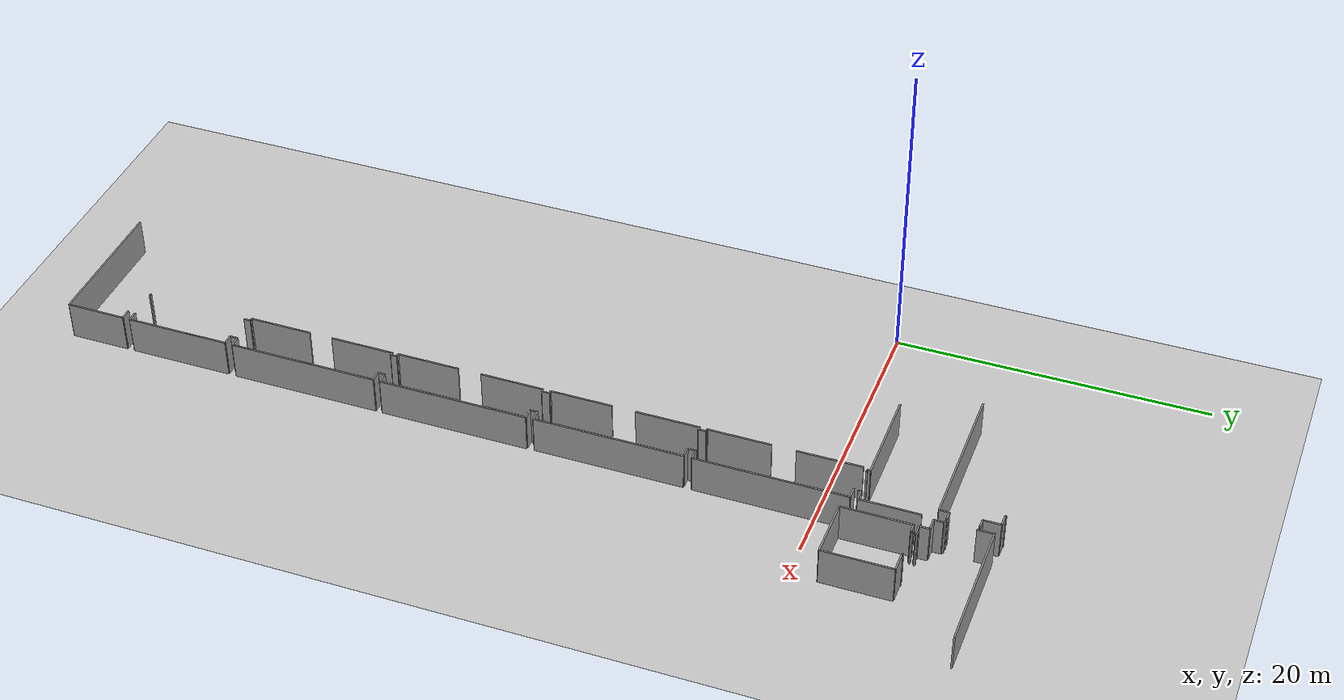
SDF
<sdf version="1.6">
 <world name="default">
  <model name="ground_plane">
   <static>1</static>
   <link name="link">
    <collision name="collision">
     <geometry><plane><normal>0 0 1</normal><size>100 100</size></plane></geometry>
     <surface><friction><ode><mu>100</mu><mu2>50</mu2></ode></friction></surface>
    </collision>
    <visual name="visual">
     <cast_shadows>0</cast_shadows>
     <geometry><plane><normal>0 0 1</normal><size>100 100</size></plane></geometry>
     <material>
      <script><uri>file://media/materials/scripts/gazebo.material</uri><name>Gazebo/Grey</name></script>
     </material>
    </visual>
   </link>
  </model>
  <model name="0510035739_A_40_1_102">
   <static>1</static>
   <link name="Wall_516">
    <collision name="Wall_516_Collision">
     <geometry><box><size>0.0939920246875 0.1 2.5</size></box></geometry>
     <pose>0.0469960123438 0 1.25 0 0 0</pose>
    </collision>
    <visual name="Wall_516_Visual">
     <pose>0.0469960123438 0 1.25 0 0 0</pose>
     <geometry><box><size>0.0939920246875 0.1 2.5</size></box></geometry>
     <material>
      <script><uri>file://media/materials/scripts/gazebo.material</uri><name>Gazebo/Grey</name></script>
      <ambient>1 1 1 1</ambient>
     </material>
    </visual>
    <pose>108.228122974 -38.8681220572 0 0 0 -1.57079632679</pose>
   </link>
   <link name="Wall_517">
    <collision name="Wall_517_Collision">
     <geometry><box><size>0.757794778985 0.1 2.5</size></box></geometry>
     <pose>0.378897389493 0 1.25 0 0 0</pose>
    </collision>
    <visual name="Wall_517_Visual">
     <pose>0.378897389493 0 1.25 0 0 0</pose>
     <geometry><box><size>0.757794778985 0.1 2.5</size></box></geometry>
     <material>
      <script><uri>file://media/materials/scripts/gazebo.material</uri><name>Gazebo/Grey</name></script>
      <ambient>1 1 1 1</ambient>
     </material>
    </visual>
    <pose>108.228122974 -38.9621140819 0 0 0 0.0</pose>
   </link>
   <link name="Wall_518">
    <collision name="Wall_518_Collision">
     <geometry><box><size>1.12408348224 0.1 2.5</size></box></geometry>
     <pose>0.562041741119 0 1.25 0 0 0</pose>
    </collision>
    <visual name="Wall_518_Visual">
     <pose>0.562041741119 0 1.25 0 0 0</pose>
     <geometry><box><size>1.12408348224 0.1 2.5</size></box></geometry>
     <material>
      <script><uri>file://media/materials/scripts/gazebo.material</uri><name>Gazebo/Grey</name></script>
      <ambient>1 1 1 1</ambient>
     </material>
    </visual>
    <pose>108.985917753 -38.9621140819 0 0 0 -1.57079632679</pose>
   </link>
   <link name="Wall_519">
    <collision name="Wall_519_Collision">
     <geometry><box><size>0.591207288075 0.1 2.5</size></box></geometry>
     <pose>0.295603644038 0 1.25 0 0 0</pose>
    </collision>
    <visual name="Wall_519_Visual">
     <pose>0.295603644038 0 1.25 0 0 0</pose>
     <geometry><box><size>0.591207288075 0.1 2.5</size></box></geometry>
     <material>
      <script><uri>file://media/materials/scripts/gazebo.material</uri><name>Gazebo/Grey</name></script>
      <ambient>1 1 1 1</ambient>
     </material>
    </visual>
    <pose>108.985917753 -40.0861975641 0 0 0 0.0</pose>
   </link>
   <link name="Wall_520">
    <collision name="Wall_520_Collision">
     <geometry><box><size>0.0664821638034 0.1 2.5</size></box></geometry>
     <pose>0.0332410819017 0 1.25 0 0 0</pose>
    </collision>
    <visual name="Wall_520_Visual">
     <pose>0.0332410819017 0 1.25 0 0 0</pose>
     <geometry><box><size>0.0664821638034 0.1 2.5</size></box></geometry>
     <material>
      <script><uri>file://media/materials/scripts/gazebo.material</uri><name>Gazebo/Grey</name></script>
      <ambient>1 1 1 1</ambient>
     </material>
    </visual>
    <pose>109.577125041 -40.0861975641 0 0 0 -1.57079632679</pose>
   </link>
   <link name="Wall_521">
    <collision name="Wall_521_Collision">
     <geometry><box><size>0.076925722102 0.1 2.5</size></box></geometry>
     <pose>0.038462861051 0 1.25 0 0 0</pose>
    </collision>
    <visual name="Wall_521_Visual">
     <pose>0.038462861051 0 1.25 0 0 0</pose>
     <geometry><box><size>0.076925722102 0.1 2.5</size></box></geometry>
     <material>
      <script><uri>file://media/materials/scripts/gazebo.material</uri><name>Gazebo/Grey</name></script>
      <ambient>1 1 1 1</ambient>
     </material>
    </visual>
    <pose>109.577125041 -41.9594153136 0 0 0 -1.57079632679</pose>
   </link>
   <link name="Wall_522">
    <collision name="Wall_522_Collision">
     <geometry><box><size>0.554272752629 0.1 2.5</size></box></geometry>
     <pose>0.277136376315 0 1.25 0 0 0</pose>
    </collision>
    <visual name="Wall_522_Visual">
     <pose>0.277136376315 0 1.25 0 0 0</pose>
     <geometry><box><size>0.554272752629 0.1 2.5</size></box></geometry>
     <material>
      <script><uri>file://media/materials/scripts/gazebo.material</uri><name>Gazebo/Grey</name></script>
      <ambient>1 1 1 1</ambient>
     </material>
    </visual>
    <pose>109.577125041 -42.0363410357 0 0 0 3.14159265359</pose>
   </link>
   <link name="Wall_523">
    <collision name="Wall_523_Collision">
     <geometry><box><size>0.616679381487 0.1 2.5</size></box></geometry>
     <pose>0.308339690743 0 1.25 0 0 0</pose>
    </collision>
    <visual name="Wall_523_Visual">
     <pose>0.308339690743 0 1.25 0 0 0</pose>
     <geometry><box><size>0.616679381487 0.1 2.5</size></box></geometry>
     <material>
      <script><uri>file://media/materials/scripts/gazebo.material</uri><name>Gazebo/Grey</name></script>
      <ambient>1 1 1 1</ambient>
     </material>
    </visual>
    <pose>109.022852289 -42.0363410357 0 0 0 -1.57079632679</pose>
   </link>
   <link name="Wall_524">
    <collision name="Wall_524_Collision">
     <geometry><box><size>9.87043619686 0.1 2.5</size></box></geometry>
     <pose>4.93521809843 0 1.25 0 0 0</pose>
    </collision>
    <visual name="Wall_524_Visual">
     <pose>4.93521809843 0 1.25 0 0 0</pose>
     <geometry><box><size>9.87043619686 0.1 2.5</size></box></geometry>
     <material>
      <script><uri>file://media/materials/scripts/gazebo.material</uri><name>Gazebo/Grey</name></script>
      <ambient>1 1 1 1</ambient>
     </material>
    </visual>
    <pose>109.022852289 -42.6530204172 0 0 0 3.14159265359</pose>
   </link>
   <link name="Wall_530">
    <collision name="Wall_530_Collision">
     <geometry><box><size>0.64597228891 0.1 2.5</size></box></geometry>
     <pose>0.322986144455 0 1.25 0 0 0</pose>
    </collision>
    <visual name="Wall_530_Visual">
     <pose>0.322986144455 0 1.25 0 0 0</pose>
     <geometry><box><size>0.64597228891 0.1 2.5</size></box></geometry>
     <material>
      <script><uri>file://media/materials/scripts/gazebo.material</uri><name>Gazebo/Grey</name></script>
      <ambient>1 1 1 1</ambient>
     </material>
    </visual>
    <pose>110.722605082 -43.3596162884 0 0 0 1.57079632679</pose>
   </link>
   <link name="Wall_531">
    <collision name="Wall_531_Collision">
     <geometry><box><size>0.797785965641 0.1 2.5</size></box></geometry>
     <pose>0.39889298282 0 1.25 0 0 0</pose>
    </collision>
    <visual name="Wall_531_Visual">
     <pose>0.39889298282 0 1.25 0 0 0</pose>
     <geometry><box><size>0.797785965641 0.1 2.5</size></box></geometry>
     <material>
      <script><uri>file://media/materials/scripts/gazebo.material</uri><name>Gazebo/Grey</name></script>
      <ambient>1 1 1 1</ambient>
     </material>
    </visual>
    <pose>110.722605082 -42.7136439995 0 0 0 3.14159265359</pose>
   </link>
   <link name="Wall_532">
    <collision name="Wall_532_Collision">
     <geometry><box><size>0.581782613513 0.1 2.5</size></box></geometry>
     <pose>0.290891306757 0 1.25 0 0 0</pose>
    </collision>
    <visual name="Wall_532_Visual">
     <pose>0.290891306757 0 1.25 0 0 0</pose>
     <geometry><box><size>0.581782613513 0.1 2.5</size></box></geometry>
     <material>
      <script><uri>file://media/materials/scripts/gazebo.material</uri><name>Gazebo/Grey</name></script>
      <ambient>1 1 1 1</ambient>
     </material>
    </visual>
    <pose>109.924819116 -42.7136439995 0 0 0 1.57079632679</pose>
   </link>
   <link name="Wall_533">
    <collision name="Wall_533_Collision">
     <geometry><box><size>0.0608783032529 0.1 2.5</size></box></geometry>
     <pose>0.0304391516265 0 1.25 0 0 0</pose>
    </collision>
    <visual name="Wall_533_Visual">
     <pose>0.0304391516265 0 1.25 0 0 0</pose>
     <geometry><box><size>0.0608783032529 0.1 2.5</size></box></geometry>
     <material>
      <script><uri>file://media/materials/scripts/gazebo.material</uri><name>Gazebo/Grey</name></script>
      <ambient>1 1 1 1</ambient>
     </material>
    </visual>
    <pose>109.924819116 -42.131861386 0 0 0 3.14159265359</pose>
   </link>
   <link name="Wall_534">
    <collision name="Wall_534_Collision">
     <geometry><box><size>0.151049513929 0.1 2.5</size></box></geometry>
     <pose>0.0755247569644 0 1.25 0 0 0</pose>
    </collision>
    <visual name="Wall_534_Visual">
     <pose>0.0755247569644 0 1.25 0 0 0</pose>
     <geometry><box><size>0.151049513929 0.1 2.5</size></box></geometry>
     <material>
      <script><uri>file://media/materials/scripts/gazebo.material</uri><name>Gazebo/Grey</name></script>
      <ambient>1 1 1 1</ambient>
     </material>
    </visual>
    <pose>109.863940813 -42.131861386 0 0 0 1.57079632679</pose>
   </link>
   <link name="Wall_535">
    <collision name="Wall_535_Collision">
     <geometry><box><size>1.02805369008 0.1 2.5</size></box></geometry>
     <pose>0.514026845039 0 1.25 0 0 0</pose>
    </collision>
    <visual name="Wall_535_Visual">
     <pose>0.514026845039 0 1.25 0 0 0</pose>
     <geometry><box><size>1.02805369008 0.1 2.5</size></box></geometry>
     <material>
      <script><uri>file://media/materials/scripts/gazebo.material</uri><name>Gazebo/Grey</name></script>
      <ambient>1 1 1 1</ambient>
     </material>
    </visual>
    <pose>109.863940813 -40.1906331471 0 0 0 1.57079632679</pose>
   </link>
   <link name="Wall_536">
    <collision name="Wall_536_Collision">
     <geometry><box><size>8.58918989828 0.1 2.5</size></box></geometry>
     <pose>4.29459494914 0 1.25 0 0 0</pose>
    </collision>
    <visual name="Wall_536_Visual">
     <pose>4.29459494914 0 1.25 0 0 0</pose>
     <geometry><box><size>8.58918989828 0.1 2.5</size></box></geometry>
     <material>
      <script><uri>file://media/materials/scripts/gazebo.material</uri><name>Gazebo/Grey</name></script>
      <ambient>1 1 1 1</ambient>
     </material>
    </visual>
    <pose>109.863940813 -39.162579457 0 0 0 0.0</pose>
   </link>
   <link name="Wall_545">
    <collision name="Wall_545_Collision">
     <geometry><box><size>0.10469030392 0.1 2.5</size></box></geometry>
     <pose>0.0523451519602 0 1.25 0 0 0</pose>
    </collision>
    <visual name="Wall_545_Visual">
     <pose>0.0523451519602 0 1.25 0 0 0</pose>
     <geometry><box><size>0.10469030392 0.1 2.5</size></box></geometry>
     <material>
      <script><uri>file://media/materials/scripts/gazebo.material</uri><name>Gazebo/Grey</name></script>
      <ambient>1 1 1 1</ambient>
     </material>
    </visual>
    <pose>111.427163186 -43.2895680315 0 0 0 3.14159265359</pose>
   </link>
   <link name="Wall_546">
    <collision name="Wall_546_Collision">
     <geometry><box><size>0.0728501871562 0.1 2.5</size></box></geometry>
     <pose>0.0364250935781 0 1.25 0 0 0</pose>
    </collision>
    <visual name="Wall_546_Visual">
     <pose>0.0364250935781 0 1.25 0 0 0</pose>
     <geometry><box><size>0.0728501871562 0.1 2.5</size></box></geometry>
     <material>
      <script><uri>file://media/materials/scripts/gazebo.material</uri><name>Gazebo/Grey</name></script>
      <ambient>1 1 1 1</ambient>
     </material>
    </visual>
    <pose>111.322472882 -43.2895680315 0 0 0 -1.57079632679</pose>
   </link>
   <link name="Wall_547">
    <collision name="Wall_547_Collision">
     <geometry><box><size>0.599874343586 0.1 2.5</size></box></geometry>
     <pose>0.299937171793 0 1.25 0 0 0</pose>
    </collision>
    <visual name="Wall_547_Visual">
     <pose>0.299937171793 0 1.25 0 0 0</pose>
     <geometry><box><size>0.599874343586 0.1 2.5</size></box></geometry>
     <material>
      <script><uri>file://media/materials/scripts/gazebo.material</uri><name>Gazebo/Grey</name></script>
      <ambient>1 1 1 1</ambient>
     </material>
    </visual>
    <pose>111.322472882 -43.3624182187 0 0 0 3.13692177461</pose>
   </link>
   <link name="Wall_548">
    <collision name="Wall_548_Collision">
     <geometry><box><size>4.43698395131 0.1 2.5</size></box></geometry>
     <pose>2.21849197565 0 1.25 0 0 0</pose>
    </collision>
    <visual name="Wall_548_Visual">
     <pose>2.21849197565 0 1.25 0 0 0</pose>
     <geometry><box><size>4.43698395131 0.1 2.5</size></box></geometry>
     <material>
      <script><uri>file://media/materials/scripts/gazebo.material</uri><name>Gazebo/Grey</name></script>
      <ambient>1 1 1 1</ambient>
     </material>
    </visual>
    <pose>110.717765384 -48.1043031281 0 0 0 1.57079632679</pose>
   </link>
   <link name="Wall_549">
    <collision name="Wall_549_Collision">
     <geometry><box><size>0.590443125273 0.1 2.5</size></box></geometry>
     <pose>0.295221562637 0 1.25 0 0 0</pose>
    </collision>
    <visual name="Wall_549_Visual">
     <pose>0.295221562637 0 1.25 0 0 0</pose>
     <geometry><box><size>0.590443125273 0.1 2.5</size></box></geometry>
     <material>
      <script><uri>file://media/materials/scripts/gazebo.material</uri><name>Gazebo/Grey</name></script>
      <ambient>1 1 1 1</ambient>
     </material>
    </visual>
    <pose>110.717765384 -43.6673191768 0 0 0 0.0</pose>
   </link>
   <link name="Wall_550">
    <collision name="Wall_550_Collision">
     <geometry><box><size>0.0766710011679 0.1 2.5</size></box></geometry>
     <pose>0.038335500584 0 1.25 0 0 0</pose>
    </collision>
    <visual name="Wall_550_Visual">
     <pose>0.038335500584 0 1.25 0 0 0</pose>
     <geometry><box><size>0.0766710011679 0.1 2.5</size></box></geometry>
     <material>
      <script><uri>file://media/materials/scripts/gazebo.material</uri><name>Gazebo/Grey</name></script>
      <ambient>1 1 1 1</ambient>
     </material>
    </visual>
    <pose>111.308208509 -43.6673191768 0 0 0 1.57079632679</pose>
   </link>
   <link name="Wall_551">
    <collision name="Wall_551_Collision">
     <geometry><box><size>0.0766710011679 0.1 2.5</size></box></geometry>
     <pose>0.0383355005839 0 1.25 0 0 0</pose>
    </collision>
    <visual name="Wall_551_Visual">
     <pose>0.0383355005839 0 1.25 0 0 0</pose>
     <geometry><box><size>0.0766710011679 0.1 2.5</size></box></geometry>
     <material>
      <script><uri>file://media/materials/scripts/gazebo.material</uri><name>Gazebo/Grey</name></script>
      <ambient>1 1 1 1</ambient>
     </material>
    </visual>
    <pose>111.308208509 -43.5906481756 0 0 0 0.0</pose>
   </link>
   <link name="Wall_552">
    <collision name="Wall_552_Collision">
     <geometry><box><size>0.0713218615516 0.1 2.5</size></box></geometry>
     <pose>0.0356609307758 0 1.25 0 0 0</pose>
    </collision>
    <visual name="Wall_552_Visual">
     <pose>0.0356609307758 0 1.25 0 0 0</pose>
     <geometry><box><size>0.0713218615516 0.1 2.5</size></box></geometry>
     <material>
      <script><uri>file://media/materials/scripts/gazebo.material</uri><name>Gazebo/Grey</name></script>
      <ambient>1 1 1 1</ambient>
     </material>
    </visual>
    <pose>113.180662096 -43.5906481756 0 0 0 0.0</pose>
   </link>
   <link name="Wall_553">
    <collision name="Wall_553_Collision">
     <geometry><box><size>0.0494158612179 0.1 2.5</size></box></geometry>
     <pose>0.0247079306089 0 1.25 0 0 0</pose>
    </collision>
    <visual name="Wall_553_Visual">
     <pose>0.0247079306089 0 1.25 0 0 0</pose>
     <geometry><box><size>0.0494158612179 0.1 2.5</size></box></geometry>
     <material>
      <script><uri>file://media/materials/scripts/gazebo.material</uri><name>Gazebo/Grey</name></script>
      <ambient>1 1 1 1</ambient>
     </material>
    </visual>
    <pose>113.251983958 -43.5906481756 0 0 0 -1.57079632679</pose>
   </link>
   <link name="Wall_554">
    <collision name="Wall_554_Collision">
     <geometry><box><size>1.2865954382 0.1 2.5</size></box></geometry>
     <pose>0.643297719101 0 1.25 0 0 0</pose>
    </collision>
    <visual name="Wall_554_Visual">
     <pose>0.643297719101 0 1.25 0 0 0</pose>
     <geometry><box><size>1.2865954382 0.1 2.5</size></box></geometry>
     <material>
      <script><uri>file://media/materials/scripts/gazebo.material</uri><name>Gazebo/Grey</name></script>
      <ambient>1 1 1 1</ambient>
     </material>
    </visual>
    <pose>113.251983958 -43.6400640368 0 0 0 0.0</pose>
   </link>
   <link name="Wall_555">
    <collision name="Wall_555_Collision">
     <geometry><box><size>4.46704102153 0.1 2.5</size></box></geometry>
     <pose>2.23352051077 0 1.25 0 0 0</pose>
    </collision>
    <visual name="Wall_555_Visual">
     <pose>2.23352051077 0 1.25 0 0 0</pose>
     <geometry><box><size>4.46704102153 0.1 2.5</size></box></geometry>
     <material>
      <script><uri>file://media/materials/scripts/gazebo.material</uri><name>Gazebo/Grey</name></script>
      <ambient>1 1 1 1</ambient>
     </material>
    </visual>
    <pose>114.538579396 -43.6400640368 0 0 0 -1.57079632679</pose>
   </link>
   <link name="Wall_556">
    <collision name="Wall_556_Collision">
     <geometry><box><size>3.82081503906 0.1 2.5</size></box></geometry>
     <pose>1.91040751953 0 1.25 0 0 0</pose>
    </collision>
    <visual name="Wall_556_Visual">
     <pose>1.91040751953 0 1.25 0 0 0</pose>
     <geometry><box><size>3.82081503906 0.1 2.5</size></box></geometry>
     <material>
      <script><uri>file://media/materials/scripts/gazebo.material</uri><name>Gazebo/Grey</name></script>
      <ambient>1 1 1 1</ambient>
     </material>
    </visual>
    <pose>114.538579396 -48.1071050584 0 0 0 3.14085932039</pose>
   </link>
   <link name="Wall_637">
    <collision name="Wall_637_Collision">
     <geometry><box><size>0.717294150461 0.1 2.5</size></box></geometry>
     <pose>0.358647075231 0 1.25 0 0 0</pose>
    </collision>
    <visual name="Wall_637_Visual">
     <pose>0.358647075231 0 1.25 0 0 0</pose>
     <geometry><box><size>0.717294150461 0.1 2.5</size></box></geometry>
     <material>
      <script><uri>file://media/materials/scripts/gazebo.material</uri><name>Gazebo/Grey</name></script>
      <ambient>1 1 1 1</ambient>
     </material>
    </visual>
    <pose>109.052399917 -95.1377594492 0 0 0 0.0</pose>
   </link>
   <link name="Wall_638">
    <collision name="Wall_638_Collision">
     <geometry><box><size>3.80451187191 0.1 2.5</size></box></geometry>
     <pose>1.90225593595 0 1.25 0 0 0</pose>
    </collision>
    <visual name="Wall_638_Visual">
     <pose>1.90225593595 0 1.25 0 0 0</pose>
     <geometry><box><size>3.80451187191 0.1 2.5</size></box></geometry>
     <material>
      <script><uri>file://media/materials/scripts/gazebo.material</uri><name>Gazebo/Grey</name></script>
      <ambient>1 1 1 1</ambient>
     </material>
    </visual>
    <pose>109.769694067 -95.1377594492 0 0 0 -1.57079632679</pose>
   </link>
   <link name="Wall_639">
    <collision name="Wall_639_Collision">
     <geometry><box><size>9.10245258051 0.1 2.5</size></box></geometry>
     <pose>4.55122629026 0 1.25 0 0 0</pose>
    </collision>
    <visual name="Wall_639_Visual">
     <pose>4.55122629026 0 1.25 0 0 0</pose>
     <geometry><box><size>9.10245258051 0.1 2.5</size></box></geometry>
     <material>
      <script><uri>file://media/materials/scripts/gazebo.material</uri><name>Gazebo/Grey</name></script>
      <ambient>1 1 1 1</ambient>
     </material>
    </visual>
    <pose>109.769694067 -98.9422713211 0 0 0 3.14159265359</pose>
   </link>
   <link name="Wall_642">
    <collision name="Wall_642_Collision">
     <geometry><box><size>0.755502290578 0.1 2.5</size></box></geometry>
     <pose>0.377751145289 0 1.25 0 0 0</pose>
    </collision>
    <visual name="Wall_642_Visual">
     <pose>0.377751145289 0 1.25 0 0 0</pose>
     <geometry><box><size>0.755502290578 0.1 2.5</size></box></geometry>
     <material>
      <script><uri>file://media/materials/scripts/gazebo.material</uri><name>Gazebo/Grey</name></script>
      <ambient>1 1 1 1</ambient>
     </material>
    </visual>
    <pose>109.007569033 -47.7517693553 0 0 0 0.0</pose>
   </link>
   <link name="Wall_643">
    <collision name="Wall_643_Collision">
     <geometry><box><size>9.66869721705 0.1 2.5</size></box></geometry>
     <pose>4.83434860852 0 1.25 0 0 0</pose>
    </collision>
    <visual name="Wall_643_Visual">
     <pose>4.83434860852 0 1.25 0 0 0</pose>
     <geometry><box><size>9.66869721705 0.1 2.5</size></box></geometry>
     <material>
      <script><uri>file://media/materials/scripts/gazebo.material</uri><name>Gazebo/Grey</name></script>
      <ambient>1 1 1 1</ambient>
     </material>
    </visual>
    <pose>109.763071323 -47.7517693553 0 0 0 -1.57079632679</pose>
   </link>
   <link name="Wall_644">
    <collision name="Wall_644_Collision">
     <geometry><box><size>0.685199312763 0.1 2.5</size></box></geometry>
     <pose>0.342599656381 0 1.25 0 0 0</pose>
    </collision>
    <visual name="Wall_644_Visual">
     <pose>0.342599656381 0 1.25 0 0 0</pose>
     <geometry><box><size>0.685199312763 0.1 2.5</size></box></geometry>
     <material>
      <script><uri>file://media/materials/scripts/gazebo.material</uri><name>Gazebo/Grey</name></script>
      <ambient>1 1 1 1</ambient>
     </material>
    </visual>
    <pose>109.763071323 -57.4204665723 0 0 0 3.14159265359</pose>
   </link>
   <link name="Wall_645">
    <collision name="Wall_645_Collision">
     <geometry><box><size>0.517592938117 0.1 2.5</size></box></geometry>
     <pose>0.258796469058 0 1.25 0 0 0</pose>
    </collision>
    <visual name="Wall_645_Visual">
     <pose>0.258796469058 0 1.25 0 0 0</pose>
     <geometry><box><size>0.517592938117 0.1 2.5</size></box></geometry>
     <material>
      <script><uri>file://media/materials/scripts/gazebo.material</uri><name>Gazebo/Grey</name></script>
      <ambient>1 1 1 1</ambient>
     </material>
    </visual>
    <pose>109.07787201 -57.4204665723 0 0 0 -1.57079632679</pose>
   </link>
   <link name="Wall_646">
    <collision name="Wall_646_Collision">
     <geometry><box><size>0.682906824356 0.1 2.5</size></box></geometry>
     <pose>0.341453412178 0 1.25 0 0 0</pose>
    </collision>
    <visual name="Wall_646_Visual">
     <pose>0.341453412178 0 1.25 0 0 0</pose>
     <geometry><box><size>0.682906824356 0.1 2.5</size></box></geometry>
     <material>
      <script><uri>file://media/materials/scripts/gazebo.material</uri><name>Gazebo/Grey</name></script>
      <ambient>1 1 1 1</ambient>
     </material>
    </visual>
    <pose>109.07787201 -57.9380595105 0 0 0 0.0</pose>
   </link>
   <link name="Wall_647">
    <collision name="Wall_647_Collision">
     <geometry><box><size>9.52477988927 0.1 2.5</size></box></geometry>
     <pose>4.76238994464 0 1.25 0 0 0</pose>
    </collision>
    <visual name="Wall_647_Visual">
     <pose>4.76238994464 0 1.25 0 0 0</pose>
     <geometry><box><size>9.52477988927 0.1 2.5</size></box></geometry>
     <material>
      <script><uri>file://media/materials/scripts/gazebo.material</uri><name>Gazebo/Grey</name></script>
      <ambient>1 1 1 1</ambient>
     </material>
    </visual>
    <pose>109.760778835 -57.9380595105 0 0 0 -1.57079632679</pose>
   </link>
   <link name="Wall_648">
    <collision name="Wall_648_Collision">
     <geometry><box><size>0.663293312429 0.1 2.5</size></box></geometry>
     <pose>0.331646656215 0 1.25 0 0 0</pose>
    </collision>
    <visual name="Wall_648_Visual">
     <pose>0.331646656215 0 1.25 0 0 0</pose>
     <geometry><box><size>0.663293312429 0.1 2.5</size></box></geometry>
     <material>
      <script><uri>file://media/materials/scripts/gazebo.material</uri><name>Gazebo/Grey</name></script>
      <ambient>1 1 1 1</ambient>
     </material>
    </visual>
    <pose>109.760778835 -67.4628393997 0 0 0 3.14159265359</pose>
   </link>
   <link name="Wall_649">
    <collision name="Wall_649_Collision">
     <geometry><box><size>0.478875356132 0.1 2.5</size></box></geometry>
     <pose>0.239437678066 0 1.25 0 0 0</pose>
    </collision>
    <visual name="Wall_649_Visual">
     <pose>0.239437678066 0 1.25 0 0 0</pose>
     <geometry><box><size>0.478875356132 0.1 2.5</size></box></geometry>
     <material>
      <script><uri>file://media/materials/scripts/gazebo.material</uri><name>Gazebo/Grey</name></script>
      <ambient>1 1 1 1</ambient>
     </material>
    </visual>
    <pose>109.097485522 -67.4628393997 0 0 0 -1.57079632679</pose>
   </link>
   <link name="Wall_650">
    <collision name="Wall_650_Collision">
     <geometry><box><size>0.699208964139 0.1 2.5</size></box></geometry>
     <pose>0.34960448207 0 1.25 0 0 0</pose>
    </collision>
    <visual name="Wall_650_Visual">
     <pose>0.34960448207 0 1.25 0 0 0</pose>
     <geometry><box><size>0.699208964139 0.1 2.5</size></box></geometry>
     <material>
      <script><uri>file://media/materials/scripts/gazebo.material</uri><name>Gazebo/Grey</name></script>
      <ambient>1 1 1 1</ambient>
     </material>
    </visual>
    <pose>109.097485522 -67.9417147559 0 0 0 0.0</pose>
   </link>
   <link name="Wall_651">
    <collision name="Wall_651_Collision">
     <geometry><box><size>9.56298802939 0.1 2.5</size></box></geometry>
     <pose>4.78149401469 0 1.25 0 0 0</pose>
    </collision>
    <visual name="Wall_651_Visual">
     <pose>4.78149401469 0 1.25 0 0 0</pose>
     <geometry><box><size>9.56298802939 0.1 2.5</size></box></geometry>
     <material>
      <script><uri>file://media/materials/scripts/gazebo.material</uri><name>Gazebo/Grey</name></script>
      <ambient>1 1 1 1</ambient>
     </material>
    </visual>
    <pose>109.796694486 -67.9417147559 0 0 0 -1.57079632679</pose>
   </link>
   <link name="Wall_652">
    <collision name="Wall_652_Collision">
     <geometry><box><size>0.707105313097 0.1 2.5</size></box></geometry>
     <pose>0.353552656548 0 1.25 0 0 0</pose>
    </collision>
    <visual name="Wall_652_Visual">
     <pose>0.353552656548 0 1.25 0 0 0</pose>
     <geometry><box><size>0.707105313097 0.1 2.5</size></box></geometry>
     <material>
      <script><uri>file://media/materials/scripts/gazebo.material</uri><name>Gazebo/Grey</name></script>
      <ambient>1 1 1 1</ambient>
     </material>
    </visual>
    <pose>109.796694486 -77.5047027852 0 0 0 3.14159265359</pose>
   </link>
   <link name="Wall_653">
    <collision name="Wall_653_Collision">
     <geometry><box><size>0.440667216015 0.1 2.5</size></box></geometry>
     <pose>0.220333608007 0 1.25 0 0 0</pose>
    </collision>
    <visual name="Wall_653_Visual">
     <pose>0.220333608007 0 1.25 0 0 0</pose>
     <geometry><box><size>0.440667216015 0.1 2.5</size></box></geometry>
     <material>
      <script><uri>file://media/materials/scripts/gazebo.material</uri><name>Gazebo/Grey</name></script>
      <ambient>1 1 1 1</ambient>
     </material>
    </visual>
    <pose>109.089589173 -77.5047027852 0 0 0 -1.57079632679</pose>
   </link>
   <link name="Wall_654">
    <collision name="Wall_654_Collision">
     <geometry><box><size>0.692586219852 0.1 2.5</size></box></geometry>
     <pose>0.346293109926 0 1.25 0 0 0</pose>
    </collision>
    <visual name="Wall_654_Visual">
     <pose>0.346293109926 0 1.25 0 0 0</pose>
     <geometry><box><size>0.692586219852 0.1 2.5</size></box></geometry>
     <material>
      <script><uri>file://media/materials/scripts/gazebo.material</uri><name>Gazebo/Grey</name></script>
      <ambient>1 1 1 1</ambient>
     </material>
    </visual>
    <pose>109.089589173 -77.9453700013 0 0 0 0.0</pose>
   </link>
   <link name="Wall_655">
    <collision name="Wall_655_Collision">
     <geometry><box><size>9.545157564 0.1 2.5</size></box></geometry>
     <pose>4.772578782 0 1.25 0 0 0</pose>
    </collision>
    <visual name="Wall_655_Visual">
     <pose>4.772578782 0 1.25 0 0 0</pose>
     <geometry><box><size>9.545157564 0.1 2.5</size></box></geometry>
     <material>
      <script><uri>file://media/materials/scripts/gazebo.material</uri><name>Gazebo/Grey</name></script>
      <ambient>1 1 1 1</ambient>
     </material>
    </visual>
    <pose>109.782175393 -77.9453700013 0 0 0 -1.57079632679</pose>
   </link>
   <link name="Wall_656">
    <collision name="Wall_656_Collision">
     <geometry><box><size>0.692586219852 0.1 2.5</size></box></geometry>
     <pose>0.346293109926 0 1.25 0 0 0</pose>
    </collision>
    <visual name="Wall_656_Visual">
     <pose>0.346293109926 0 1.25 0 0 0</pose>
     <geometry><box><size>0.692586219852 0.1 2.5</size></box></geometry>
     <material>
      <script><uri>file://media/materials/scripts/gazebo.material</uri><name>Gazebo/Grey</name></script>
      <ambient>1 1 1 1</ambient>
     </material>
    </visual>
    <pose>109.782175393 -87.4905275653 0 0 0 3.14159265359</pose>
   </link>
   <link name="Wall_657">
    <collision name="Wall_657_Collision">
     <geometry><box><size>0.516319333446 0.1 2.5</size></box></geometry>
     <pose>0.258159666723 0 1.25 0 0 0</pose>
    </collision>
    <visual name="Wall_657_Visual">
     <pose>0.258159666723 0 1.25 0 0 0</pose>
     <geometry><box><size>0.516319333446 0.1 2.5</size></box></geometry>
     <material>
      <script><uri>file://media/materials/scripts/gazebo.material</uri><name>Gazebo/Grey</name></script>
      <ambient>1 1 1 1</ambient>
     </material>
    </visual>
    <pose>109.089589173 -87.4905275653 0 0 0 -1.57079632679</pose>
   </link>
   <link name="Wall_658">
    <collision name="Wall_658_Collision">
     <geometry><box><size>0.679850173147 0.1 2.5</size></box></geometry>
     <pose>0.339925086573 0 1.25 0 0 0</pose>
    </collision>
    <visual name="Wall_658_Visual">
     <pose>0.339925086573 0 1.25 0 0 0</pose>
     <geometry><box><size>0.679850173147 0.1 2.5</size></box></geometry>
     <material>
      <script><uri>file://media/materials/scripts/gazebo.material</uri><name>Gazebo/Grey</name></script>
      <ambient>1 1 1 1</ambient>
     </material>
    </visual>
    <pose>109.089589173 -88.0068468987 0 0 0 0.0</pose>
   </link>
   <link name="Wall_659">
    <collision name="Wall_659_Collision">
     <geometry><box><size>6.63624449644 0.1 2.5</size></box></geometry>
     <pose>3.31812224822 0 1.25 0 0 0</pose>
    </collision>
    <visual name="Wall_659_Visual">
     <pose>3.31812224822 0 1.25 0 0 0</pose>
     <geometry><box><size>6.63624449644 0.1 2.5</size></box></geometry>
     <material>
      <script><uri>file://media/materials/scripts/gazebo.material</uri><name>Gazebo/Grey</name></script>
      <ambient>1 1 1 1</ambient>
     </material>
    </visual>
    <pose>109.769439346 -88.0068468987 0 0 0 -1.57079632679</pose>
   </link>
   <link name="Wall_660">
    <collision name="Wall_660_Collision">
     <geometry><box><size>0.667368847375 0.1 2.5</size></box></geometry>
     <pose>0.333684423688 0 1.25 0 0 0</pose>
    </collision>
    <visual name="Wall_660_Visual">
     <pose>0.333684423688 0 1.25 0 0 0</pose>
     <geometry><box><size>0.667368847375 0.1 2.5</size></box></geometry>
     <material>
      <script><uri>file://media/materials/scripts/gazebo.material</uri><name>Gazebo/Grey</name></script>
      <ambient>1 1 1 1</ambient>
     </material>
    </visual>
    <pose>109.769439346 -94.6430913951 0 0 0 3.14159265359</pose>
   </link>
   <link name="Wall_661">
    <collision name="Wall_661_Collision">
     <geometry><box><size>0.165313886239 0.1 2.5</size></box></geometry>
     <pose>0.0826569431195 0 1.25 0 0 0</pose>
    </collision>
    <visual name="Wall_661_Visual">
     <pose>0.0826569431195 0 1.25 0 0 0</pose>
     <geometry><box><size>0.165313886239 0.1 2.5</size></box></geometry>
     <material>
      <script><uri>file://media/materials/scripts/gazebo.material</uri><name>Gazebo/Grey</name></script>
      <ambient>1 1 1 1</ambient>
     </material>
    </visual>
    <pose>107.216880866 -94.6430913951 0 0 0 3.14159265359</pose>
   </link>
   <link name="Wall_665">
    <collision name="Wall_665_Collision">
     <geometry><box><size>0.428185890243 0.1 2.5</size></box></geometry>
     <pose>0.214092945122 0 1.25 0 0 0</pose>
    </collision>
    <visual name="Wall_665_Visual">
     <pose>0.214092945122 0 1.25 0 0 0</pose>
     <geometry><box><size>0.428185890243 0.1 2.5</size></box></geometry>
     <material>
      <script><uri>file://media/materials/scripts/gazebo.material</uri><name>Gazebo/Grey</name></script>
      <ambient>1 1 1 1</ambient>
     </material>
    </visual>
    <pose>107.276230843 -87.9691482005 0 0 0 1.57079632679</pose>
   </link>
   <link name="Wall_666">
    <collision name="Wall_666_Collision">
     <geometry><box><size>0.195370956464 0.1 2.5</size></box></geometry>
     <pose>0.0976854782322 0 1.25 0 0 0</pose>
    </collision>
    <visual name="Wall_666_Visual">
     <pose>0.0976854782322 0 1.25 0 0 0</pose>
     <geometry><box><size>0.195370956464 0.1 2.5</size></box></geometry>
     <material>
      <script><uri>file://media/materials/scripts/gazebo.material</uri><name>Gazebo/Grey</name></script>
      <ambient>1 1 1 1</ambient>
     </material>
    </visual>
    <pose>107.276230843 -87.5409623102 0 0 0 3.14159265359</pose>
   </link>
   <link name="Wall_667">
    <collision name="Wall_667_Collision">
     <geometry><box><size>4.0217888287 0.1 2.5</size></box></geometry>
     <pose>2.01089441435 0 1.25 0 0 0</pose>
    </collision>
    <visual name="Wall_667_Visual">
     <pose>2.01089441435 0 1.25 0 0 0</pose>
     <geometry><box><size>4.0217888287 0.1 2.5</size></box></geometry>
     <material>
      <script><uri>file://media/materials/scripts/gazebo.material</uri><name>Gazebo/Grey</name></script>
      <ambient>1 1 1 1</ambient>
     </material>
    </visual>
    <pose>107.080859887 -87.5409623102 0 0 0 1.57079632679</pose>
   </link>
   <link name="Wall_668">
    <collision name="Wall_668_Collision">
     <geometry><box><size>4.0867426669 0.1 2.5</size></box></geometry>
     <pose>2.04337133345 0 1.25 0 0 0</pose>
    </collision>
    <visual name="Wall_668_Visual">
     <pose>2.04337133345 0 1.25 0 0 0</pose>
     <geometry><box><size>4.0867426669 0.1 2.5</size></box></geometry>
     <material>
      <script><uri>file://media/materials/scripts/gazebo.material</uri><name>Gazebo/Grey</name></script>
      <ambient>1 1 1 1</ambient>
     </material>
    </visual>
    <pose>107.080859887 -82.013263319 0 0 0 1.57079632679</pose>
   </link>
   <link name="Wall_669">
    <collision name="Wall_669_Collision">
     <geometry><box><size>0.195370956464 0.1 2.5</size></box></geometry>
     <pose>0.0976854782322 0 1.25 0 0 0</pose>
    </collision>
    <visual name="Wall_669_Visual">
     <pose>0.0976854782322 0 1.25 0 0 0</pose>
     <geometry><box><size>0.195370956464 0.1 2.5</size></box></geometry>
     <material>
      <script><uri>file://media/materials/scripts/gazebo.material</uri><name>Gazebo/Grey</name></script>
      <ambient>1 1 1 1</ambient>
     </material>
    </visual>
    <pose>107.080859887 -77.9265206521 0 0 0 0.0</pose>
   </link>
   <link name="Wall_670">
    <collision name="Wall_670_Collision">
     <geometry><box><size>0.390487191995 0.1 2.5</size></box></geometry>
     <pose>0.195243595997 0 1.25 0 0 0</pose>
    </collision>
    <visual name="Wall_670_Visual">
     <pose>0.195243595997 0 1.25 0 0 0</pose>
     <geometry><box><size>0.390487191995 0.1 2.5</size></box></geometry>
     <material>
      <script><uri>file://media/materials/scripts/gazebo.material</uri><name>Gazebo/Grey</name></script>
      <ambient>1 1 1 1</ambient>
     </material>
    </visual>
    <pose>107.276230843 -77.9265206521 0 0 0 1.57079632679</pose>
   </link>
   <link name="Wall_671">
    <collision name="Wall_671_Collision">
     <geometry><box><size>0.214220305589 0.1 2.5</size></box></geometry>
     <pose>0.107110152794 0 1.25 0 0 0</pose>
    </collision>
    <visual name="Wall_671_Visual">
     <pose>0.107110152794 0 1.25 0 0 0</pose>
     <geometry><box><size>0.214220305589 0.1 2.5</size></box></geometry>
     <material>
      <script><uri>file://media/materials/scripts/gazebo.material</uri><name>Gazebo/Grey</name></script>
      <ambient>1 1 1 1</ambient>
     </material>
    </visual>
    <pose>107.276230843 -77.5360334601 0 0 0 3.14159265359</pose>
   </link>
   <link name="Wall_672">
    <collision name="Wall_672_Collision">
     <geometry><box><size>4.03044934046 0.1 2.5</size></box></geometry>
     <pose>2.01522467023 0 1.25 0 0 0</pose>
    </collision>
    <visual name="Wall_672_Visual">
     <pose>2.01522467023 0 1.25 0 0 0</pose>
     <geometry><box><size>4.03044934046 0.1 2.5</size></box></geometry>
     <material>
      <script><uri>file://media/materials/scripts/gazebo.material</uri><name>Gazebo/Grey</name></script>
      <ambient>1 1 1 1</ambient>
     </material>
    </visual>
    <pose>107.062010538 -77.5360334601 0 0 0 1.57079632679</pose>
   </link>
   <link name="Wall_673">
    <collision name="Wall_673_Collision">
     <geometry><box><size>4.07757271327 0.1 2.5</size></box></geometry>
     <pose>2.03878635664 0 1.25 0 0 0</pose>
    </collision>
    <visual name="Wall_673_Visual">
     <pose>2.03878635664 0 1.25 0 0 0</pose>
     <geometry><box><size>4.07757271327 0.1 2.5</size></box></geometry>
     <material>
      <script><uri>file://media/materials/scripts/gazebo.material</uri><name>Gazebo/Grey</name></script>
      <ambient>1 1 1 1</ambient>
     </material>
    </visual>
    <pose>107.062010538 -72.0088439108 0 0 0 1.57079632679</pose>
   </link>
   <link name="Wall_674">
    <collision name="Wall_674_Collision">
     <geometry><box><size>0.192059584321 0.1 2.5</size></box></geometry>
     <pose>0.0960297921605 0 1.25 0 0 0</pose>
    </collision>
    <visual name="Wall_674_Visual">
     <pose>0.0960297921605 0 1.25 0 0 0</pose>
     <geometry><box><size>0.192059584321 0.1 2.5</size></box></geometry>
     <material>
      <script><uri>file://media/materials/scripts/gazebo.material</uri><name>Gazebo/Grey</name></script>
      <ambient>1 1 1 1</ambient>
     </material>
    </visual>
    <pose>107.062010538 -67.9312711976 0 0 0 0.0</pose>
   </link>
   <link name="Wall_675">
    <collision name="Wall_675_Collision">
     <geometry><box><size>0.482950891078 0.1 2.5</size></box></geometry>
     <pose>0.241475445539 0 1.25 0 0 0</pose>
    </collision>
    <visual name="Wall_675_Visual">
     <pose>0.241475445539 0 1.25 0 0 0</pose>
     <geometry><box><size>0.482950891078 0.1 2.5</size></box></geometry>
     <material>
      <script><uri>file://media/materials/scripts/gazebo.material</uri><name>Gazebo/Grey</name></script>
      <ambient>1 1 1 1</ambient>
     </material>
    </visual>
    <pose>107.254070122 -67.9312711976 0 0 0 1.57079632679</pose>
   </link>
   <link name="Wall_676">
    <collision name="Wall_676_Collision">
     <geometry><box><size>0.199955933278 0.1 2.5</size></box></geometry>
     <pose>0.0999779666392 0 1.25 0 0 0</pose>
    </collision>
    <visual name="Wall_676_Visual">
     <pose>0.0999779666392 0 1.25 0 0 0</pose>
     <geometry><box><size>0.199955933278 0.1 2.5</size></box></geometry>
     <material>
      <script><uri>file://media/materials/scripts/gazebo.material</uri><name>Gazebo/Grey</name></script>
      <ambient>1 1 1 1</ambient>
     </material>
    </visual>
    <pose>107.254070122 -67.4483203065 0 0 0 3.14159265359</pose>
   </link>
   <link name="Wall_677">
    <collision name="Wall_677_Collision">
     <geometry><box><size>3.97874099084 0.1 2.5</size></box></geometry>
     <pose>1.98937049542 0 1.25 0 0 0</pose>
    </collision>
    <visual name="Wall_677_Visual">
     <pose>1.98937049542 0 1.25 0 0 0</pose>
     <geometry><box><size>3.97874099084 0.1 2.5</size></box></geometry>
     <material>
      <script><uri>file://media/materials/scripts/gazebo.material</uri><name>Gazebo/Grey</name></script>
      <ambient>1 1 1 1</ambient>
     </material>
    </visual>
    <pose>107.054114189 -67.4483203065 0 0 0 1.57079632679</pose>
   </link>
   <link name="Wall_678">
    <collision name="Wall_678_Collision">
     <geometry><box><size>4.05694031761 0.1 2.5</size></box></geometry>
     <pose>2.02847015881 0 1.25 0 0 0</pose>
    </collision>
    <visual name="Wall_678_Visual">
     <pose>2.02847015881 0 1.25 0 0 0</pose>
     <geometry><box><size>4.05694031761 0.1 2.5</size></box></geometry>
     <material>
      <script><uri>file://media/materials/scripts/gazebo.material</uri><name>Gazebo/Grey</name></script>
      <ambient>1 1 1 1</ambient>
     </material>
    </visual>
    <pose>107.054114189 -61.9649427578 0 0 0 1.57079632679</pose>
   </link>
   <link name="Wall_679">
    <collision name="Wall_679_Collision">
     <geometry><box><size>0.197154003003 0.1 2.5</size></box></geometry>
     <pose>0.0985770015016 0 1.25 0 0 0</pose>
    </collision>
    <visual name="Wall_679_Visual">
     <pose>0.0985770015016 0 1.25 0 0 0</pose>
     <geometry><box><size>0.197154003003 0.1 2.5</size></box></geometry>
     <material>
      <script><uri>file://media/materials/scripts/gazebo.material</uri><name>Gazebo/Grey</name></script>
      <ambient>1 1 1 1</ambient>
     </material>
    </visual>
    <pose>107.054114189 -57.9080024402 0 0 0 0.0</pose>
   </link>
   <link name="Wall_680">
    <collision name="Wall_680_Collision">
     <geometry><box><size>0.481677286407 0.1 2.5</size></box></geometry>
     <pose>0.240838643203 0 1.25 0 0 0</pose>
    </collision>
    <visual name="Wall_680_Visual">
     <pose>0.240838643203 0 1.25 0 0 0</pose>
     <geometry><box><size>0.481677286407 0.1 2.5</size></box></geometry>
     <material>
      <script><uri>file://media/materials/scripts/gazebo.material</uri><name>Gazebo/Grey</name></script>
      <ambient>1 1 1 1</ambient>
     </material>
    </visual>
    <pose>107.251268192 -57.9080024402 0 0 0 1.57079632679</pose>
   </link>
   <link name="Wall_681">
    <collision name="Wall_681_Collision">
     <geometry><box><size>0.186201002836 0.1 2.5</size></box></geometry>
     <pose>0.0931005014181 0 1.25 0 0 0</pose>
    </collision>
    <visual name="Wall_681_Visual">
     <pose>0.0931005014181 0 1.25 0 0 0</pose>
     <geometry><box><size>0.186201002836 0.1 2.5</size></box></geometry>
     <material>
      <script><uri>file://media/materials/scripts/gazebo.material</uri><name>Gazebo/Grey</name></script>
      <ambient>1 1 1 1</ambient>
     </material>
    </visual>
    <pose>107.251268192 -57.4263251538 0 0 0 3.14159265359</pose>
   </link>
   <link name="Wall_682">
    <collision name="Wall_682_Collision">
     <geometry><box><size>4.04063817783 0.1 2.5</size></box></geometry>
     <pose>2.02031908891 0 1.25 0 0 0</pose>
    </collision>
    <visual name="Wall_682_Visual">
     <pose>2.02031908891 0 1.25 0 0 0</pose>
     <geometry><box><size>4.04063817783 0.1 2.5</size></box></geometry>
     <material>
      <script><uri>file://media/materials/scripts/gazebo.material</uri><name>Gazebo/Grey</name></script>
      <ambient>1 1 1 1</ambient>
     </material>
    </visual>
    <pose>107.065067189 -57.4263251538 0 0 0 1.57079632679</pose>
   </link>
   <link name="Wall_683">
    <collision name="Wall_683_Collision">
     <geometry><box><size>4.11840065945 0.1 2.5</size></box></geometry>
     <pose>2.05920032972 0 1.25 0 0 0</pose>
    </collision>
    <visual name="Wall_683_Visual">
     <pose>2.05920032972 0 1.25 0 0 0</pose>
     <geometry><box><size>4.11840065945 0.1 2.5</size></box></geometry>
     <material>
      <script><uri>file://media/materials/scripts/gazebo.material</uri><name>Gazebo/Grey</name></script>
      <ambient>1 1 1 1</ambient>
     </material>
    </visual>
    <pose>107.065067189 -51.870097418 0 0 0 1.57673391164</pose>
   </link>
   <link name="Wall_687">
    <collision name="Wall_687_Collision">
     <geometry><box><size>3.84221057015 0.1 2.5</size></box></geometry>
     <pose>1.92110528508 0 1.25 0 0 0</pose>
    </collision>
    <visual name="Wall_687_Visual">
     <pose>1.92110528508 0 1.25 0 0 0</pose>
     <geometry><box><size>3.84221057015 0.1 2.5</size></box></geometry>
     <material>
      <script><uri>file://media/materials/scripts/gazebo.material</uri><name>Gazebo/Grey</name></script>
      <ambient>1 1 1 1</ambient>
     </material>
    </visual>
    <pose>109.760269393 -43.4559008015 0 0 0 -1.57079632679</pose>
   </link>
   <link name="Wall_688">
    <collision name="Wall_688_Collision">
     <geometry><box><size>0.696661754798 0.1 2.5</size></box></geometry>
     <pose>0.348330877399 0 1.25 0 0 0</pose>
    </collision>
    <visual name="Wall_688_Visual">
     <pose>0.348330877399 0 1.25 0 0 0</pose>
     <geometry><box><size>0.696661754798 0.1 2.5</size></box></geometry>
     <material>
      <script><uri>file://media/materials/scripts/gazebo.material</uri><name>Gazebo/Grey</name></script>
      <ambient>1 1 1 1</ambient>
     </material>
    </visual>
    <pose>109.760269393 -47.2981113716 0 0 0 3.14159265359</pose>
   </link>
   <link name="Wall_689">
    <collision name="Wall_689_Collision">
     <geometry><box><size>0.190021816848 0.1 2.5</size></box></geometry>
     <pose>0.095010908424 0 1.25 0 0 0</pose>
    </collision>
    <visual name="Wall_689_Visual">
     <pose>0.095010908424 0 1.25 0 0 0</pose>
     <geometry><box><size>0.190021816848 0.1 2.5</size></box></geometry>
     <material>
      <script><uri>file://media/materials/scripts/gazebo.material</uri><name>Gazebo/Grey</name></script>
      <ambient>1 1 1 1</ambient>
     </material>
    </visual>
    <pose>109.063607638 -47.2981113716 0 0 0 -1.57079632679</pose>
   </link>
   <link name="Wall_690">
    <collision name="Wall_690_Collision">
     <geometry><box><size>0.132200164804 0.1 2.5</size></box></geometry>
     <pose>0.0661000824022 0 1.25 0 0 0</pose>
    </collision>
    <visual name="Wall_690_Visual">
     <pose>0.0661000824022 0 1.25 0 0 0</pose>
     <geometry><box><size>0.132200164804 0.1 2.5</size></box></geometry>
     <material>
      <script><uri>file://media/materials/scripts/gazebo.material</uri><name>Gazebo/Grey</name></script>
      <ambient>1 1 1 1</ambient>
     </material>
    </visual>
    <pose>107.339146914 -47.4881331885 0 0 0 3.14159265359</pose>
   </link>
   <link name="Wall_691">
    <collision name="Wall_691_Collision">
     <geometry><box><size>0.193333188991 0.1 2.5</size></box></geometry>
     <pose>0.0966665944957 0 1.25 0 0 0</pose>
    </collision>
    <visual name="Wall_691_Visual">
     <pose>0.0966665944957 0 1.25 0 0 0</pose>
     <geometry><box><size>0.193333188991 0.1 2.5</size></box></geometry>
     <material>
      <script><uri>file://media/materials/scripts/gazebo.material</uri><name>Gazebo/Grey</name></script>
      <ambient>1 1 1 1</ambient>
     </material>
    </visual>
    <pose>107.206946749 -47.4881331885 0 0 0 1.57079632679</pose>
   </link>
   <link name="Wall_692">
    <collision name="Wall_692_Collision">
     <geometry><box><size>6.24501508955 0.1 2.5</size></box></geometry>
     <pose>3.12250754478 0 1.25 0 0 0</pose>
    </collision>
    <visual name="Wall_692_Visual">
     <pose>3.12250754478 0 1.25 0 0 0</pose>
     <geometry><box><size>6.24501508955 0.1 2.5</size></box></geometry>
     <material>
      <script><uri>file://media/materials/scripts/gazebo.material</uri><name>Gazebo/Grey</name></script>
      <ambient>1 1 1 1</ambient>
     </material>
    </visual>
    <pose>107.206946749 -47.2947999995 0 0 0 -3.1389414382</pose>
   </link>
   <pose>-92.5 49.8157534709 0 0 0 0</pose>
  </model>
 </world>
</sdf>
